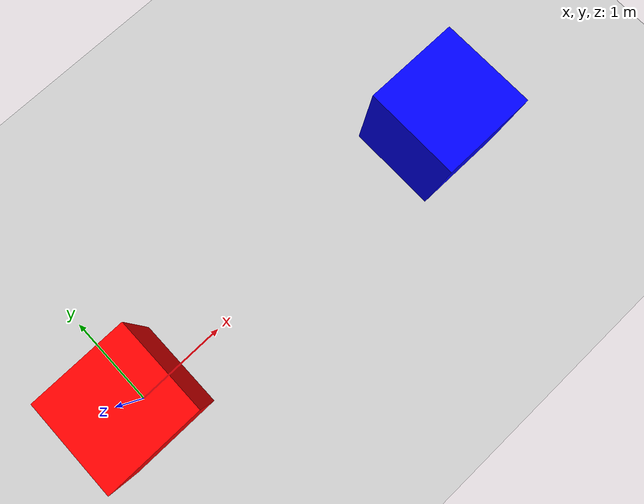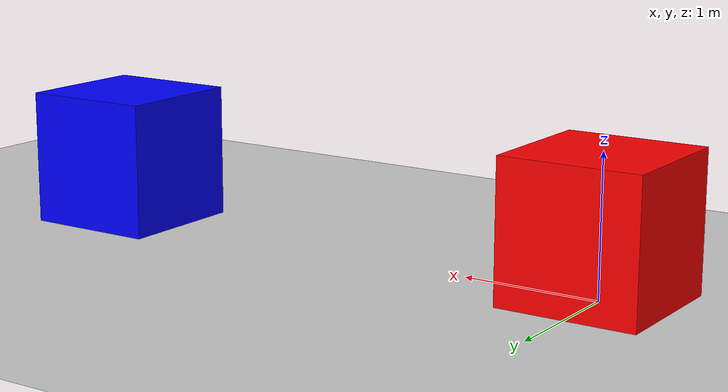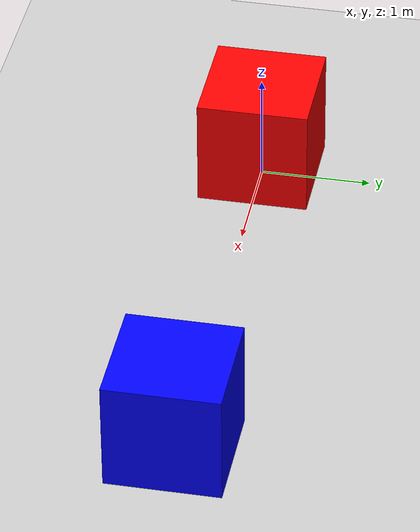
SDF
<?xml version="1.0" ?>
<sdf version="1.6">
  <world name="default">

    <gravity>0 0 -9.8</gravity>

    <include>
      <uri>model://sun</uri>
    </include>

    <model name="ground_plane">
      <static>1</static>
      <link name="link">
        <collision name="collision">
          <geometry>
            <plane>
              <normal>0 0 1</normal>
              <size>50 50</size>
            </plane>
          </geometry>
          <surface>
            <friction>
              <ode>
                <mu>100</mu>
                <mu2>50</mu2>
              </ode>
            </friction>
          </surface>
        </collision>
        <visual name="visual">
          <cast_shadows>0</cast_shadows>
          <geometry>
            <plane>
              <normal>0 0 1</normal>
              <size>50 50</size>
            </plane>
          </geometry>
          <material>
            <script>
              <uri>file://media/materials/scripts/gazebo.material</uri>
              <name>Gazebo/Grey</name>
            </script>
          </material>
          <!-- Vizualizacia prejdenej trajektorie. Plugin kompenzuje
               scale ground_plane priamo v kode (world->local frame). -->
          <plugin name="path_trail" filename="libpath_trail_visual_plugin.so">
            <robot_name>robot</robot_name>
            <min_distance>0.05</min_distance>
            <line_z>0.05</line_z>
          </plugin>
        </visual>
      </link>
    </model>

    <model name="center_box">
      <static>false</static>
      <pose>0 0 0.5 0 0 0</pose>

      <link name="link">
        <inertial>
          <mass>2.0</mass>
          <inertia>
            <ixx>0.166</ixx>
            <iyy>0.166</iyy>
            <izz>0.166</izz>
            <ixy>0.0</ixy>
            <ixz>0.0</ixz>
            <iyz>0.0</iyz>
          </inertia>
        </inertial>

        <collision name="collision">
          <geometry>
            <box>
              <size>1 1 1</size>
            </box>
          </geometry>
        </collision>

        <visual name="visual">
          <geometry>
            <box>
              <size>1 1 1</size>
            </box>
          </geometry>
          <material>
            <ambient>1 0 0 1</ambient>
            <diffuse>1 0 0 1</diffuse>
          </material>
        </visual>
      </link>

      <plugin name="oscillate_box_plugin" filename="liboscillate_box_plugin.so">
        <axis>y</axis>
        <amplitude>3.0</amplitude>
        <frequency>0.05</frequency>
      </plugin>
    </model>

    <model name="second_box">
      <static>false</static>
      <pose>4 0 0.5 0 0 0</pose>

      <link name="link">
        <inertial>
          <mass>2.0</mass>
          <inertia>
            <ixx>0.166</ixx>
            <iyy>0.166</iyy>
            <izz>0.166</izz>
            <ixy>0.0</ixy>
            <ixz>0.0</ixz>
            <iyz>0.0</iyz>
          </inertia>
        </inertial>

        <collision name="collision">
          <geometry>
            <box>
              <size>1 1 1</size>
            </box>
          </geometry>
        </collision>

        <visual name="visual">
          <geometry>
            <box>
              <size>1 1 1</size>
            </box>
          </geometry>
          <material>
            <ambient>0 0 1 1</ambient>
            <diffuse>0 0 1 1</diffuse>
          </material>
        </visual>
      </link>

      <plugin name="oscillate_box_plugin" filename="liboscillate_box_plugin.so">
        <axis>x</axis>
        <amplitude>2.0</amplitude>
        <frequency>0.08</frequency>
      </plugin>
    </model>

    <physics type="ode">
      <max_step_size>0.01</max_step_size>
      <real_time_factor>1</real_time_factor>
      <real_time_update_rate>100</real_time_update_rate>
    </physics>

    <!-- GUI pluginy (gazebo_goal_tool, gazebo_nav_goal_gui) su teraz
         nacitane cez -g flag v gazebo.launch, takze funguju pre kazdy svet. -->

  </world>
</sdf>
